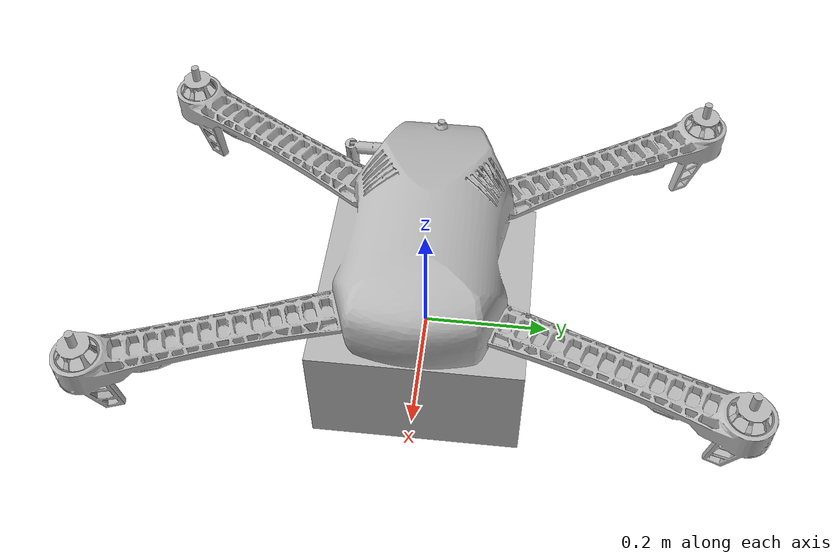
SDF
<?xml version="1.0" ?>
<sdf version="1.6">
  <model name="iris_visual_only">
    <static>false</static>

    <link name="base_link">
      <pose>0 0 0 0 0 0</pose>

      <inertial>
        <mass>1.0</mass>
        <inertia>
          <ixx>0.02</ixx><iyy>0.02</iyy><izz>0.04</izz>
          <ixy>0</ixy><ixz>0</ixz><iyz>0</iyz>
        </inertia>
      </inertial>

      <!-- 简单碰撞：稳定即可 -->
      <collision name="collision">
        <geometry>
          <box><size>0.45 0.45 0.15</size></box>
        </geometry>
      </collision>

      <!-- 外观：使用 iris 的 STL -->
      <visual name="visual">
        <pose>0 0 0 0 0 0</pose>
        <geometry>
          <mesh>
            <uri>model://iris/meshes/iris.stl</uri>
            <scale>1 1 1</scale>
          </mesh>
        </geometry>
      </visual>
    </link>
  </model>
</sdf>
